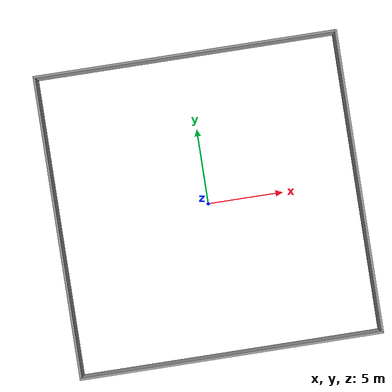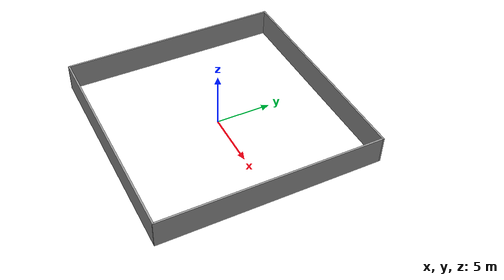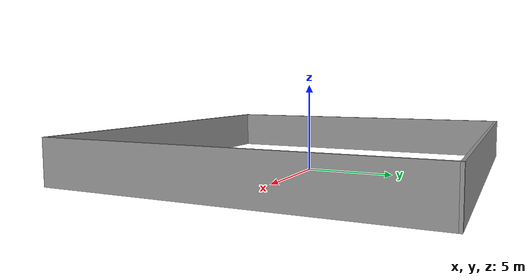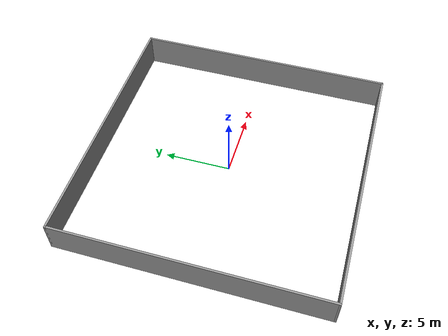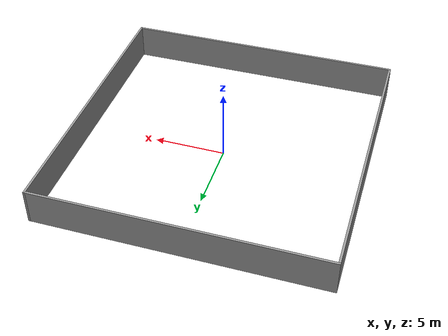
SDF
<?xml version='1.0'?>
<sdf version='1.7'>
  <model name='model1'>
    <pose>-0.005286 -0.052828 0 0 -0 0</pose>
    <link name='Wall_17'>
      <collision name='Wall_17_Collision'>
        <geometry>
          <box>
            <size>19.9446 0.15 2.5</size>
          </box>
        </geometry>
        <pose>0 0 1.25 0 -0 0</pose>
      </collision>
      <visual name='Wall_17_Visual'>
        <pose>0 0 1.25 0 -0 0</pose>
        <geometry>
          <box>
            <size>19.9446 0.15 2.5</size>
          </box>
        </geometry>
        <material>
          <script>
            <uri>file://media/materials/scripts/gazebo.material</uri>
            <name>Gazebo/Grey</name>
          </script>
          <ambient>1 1 1 1</ambient>
        </material>
        <meta>
          <layer>0</layer>
        </meta>
      </visual>
      <pose>-0.020664 -9.92497 0 0 -0 0.001021</pose>
    </link>
    <link name='Wall_19'>
      <collision name='Wall_19_Collision'>
        <geometry>
          <box>
            <size>20 0.15 2.5</size>
          </box>
        </geometry>
        <pose>0 0 1.25 0 -0 0</pose>
      </collision>
      <visual name='Wall_19_Visual'>
        <pose>0 0 1.25 0 -0 0</pose>
        <geometry>
          <box>
            <size>20 0.15 2.5</size>
          </box>
        </geometry>
        <material>
          <script>
            <uri>file://media/materials/scripts/gazebo.material</uri>
            <name>Gazebo/Grey</name>
          </script>
          <ambient>1 1 1 1</ambient>
        </material>
        <meta>
          <layer>0</layer>
        </meta>
      </visual>
      <pose>9.92501 0.010134 0 0 -0 1.5708</pose>
    </link>
    <link name='Wall_22'>
      <collision name='Wall_22_Collision'>
        <geometry>
          <box>
            <size>20 0.15 2.5</size>
          </box>
        </geometry>
        <pose>0 0 1.25 0 -0 0</pose>
      </collision>
      <visual name='Wall_22_Visual'>
        <pose>0 0 1.25 0 -0 0</pose>
        <geometry>
          <box>
            <size>20 0.15 2.5</size>
          </box>
        </geometry>
        <material>
          <script>
            <uri>file://media/materials/scripts/gazebo.material</uri>
            <name>Gazebo/Grey</name>
          </script>
          <ambient>1 1 1 1</ambient>
        </material>
        <meta>
          <layer>0</layer>
        </meta>
      </visual>
      <pose>1.3e-05 9.93513 0 0 -0 3.14159</pose>
    </link>
    <link name='Wall_24'>
      <collision name='Wall_24_Collision'>
        <geometry>
          <box>
            <size>20.0202 0.15 2.5</size>
          </box>
        </geometry>
        <pose>0 0 1.25 0 -0 0</pose>
      </collision>
      <visual name='Wall_24_Visual'>
        <pose>0 0 1.25 0 -0 0</pose>
        <geometry>
          <box>
            <size>20.0202 0.15 2.5</size>
          </box>
        </geometry>
        <material>
          <script>
            <uri>file://media/materials/scripts/gazebo.material</uri>
            <name>Gazebo/Grey</name>
          </script>
          <ambient>1 1 1 1</ambient>
        </material>
        <meta>
          <layer>0</layer>
        </meta>
      </visual>
      <pose>-9.92147 2.5e-05 0 0 -0 -1.57044</pose>
    </link>
    <static>1</static>
  </model>
</sdf>
